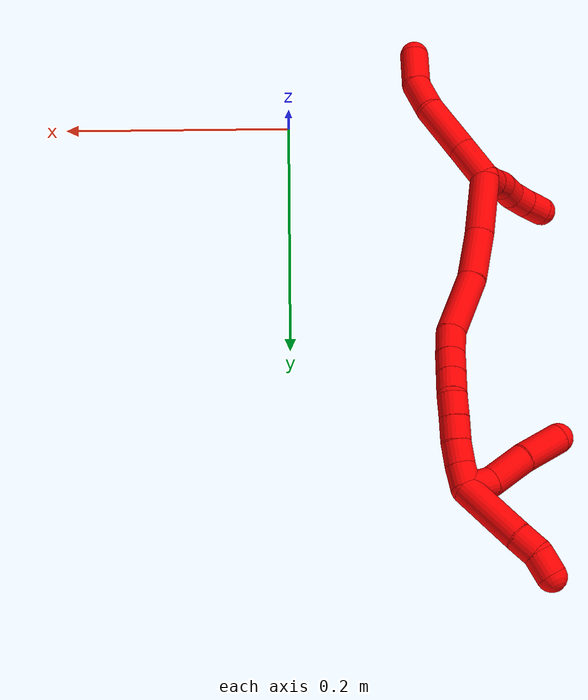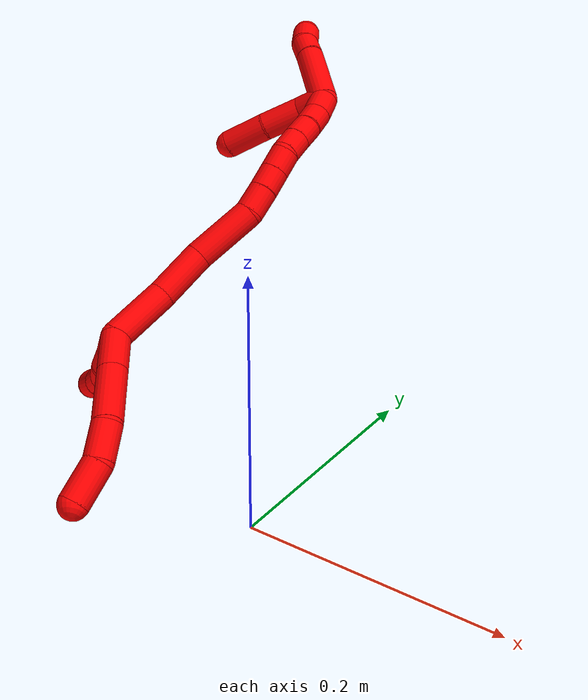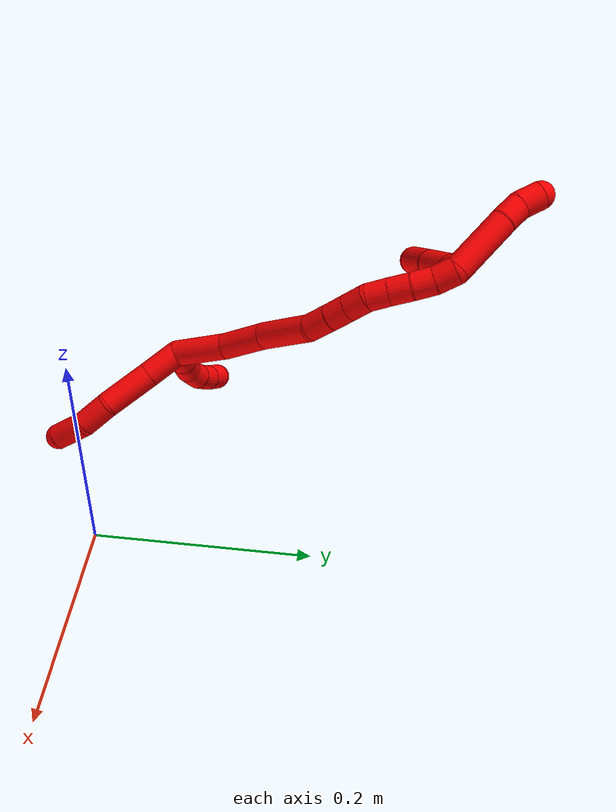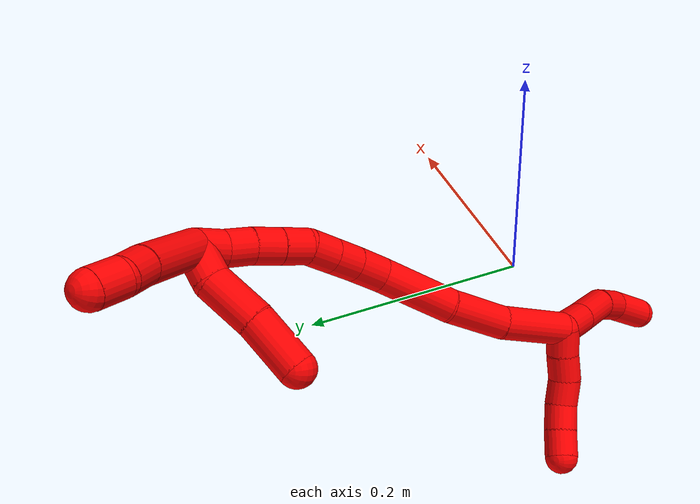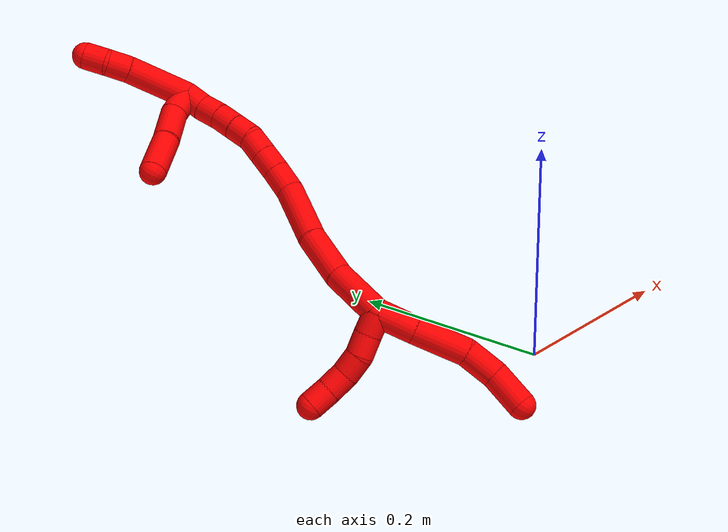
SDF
<sdf version="1.7">
 <world name="default">
  <model name="2">
   <static>0</static>
   <link name="2">
    <collision name="collision-cylinder-e_1_2_8">
     <pose>0.000566 0.002195 -0.017169 -3.01442 0.032681 -0.502464</pose>
     <geometry><cylinder><radius>0.0125</radius><length>0.034636</length></cylinder></geometry>
     <surface>
      <friction><ode><mu>1.16</mu><mu2>1.16</mu2><slip1>0</slip1><slip2>0</slip2></ode></friction>
      <contact><ode><kp>1e+06</kp><kd>1</kd><max_vel>0</max_vel><min_depth>0.001</min_depth></ode></contact>
     </surface>
    </collision>
    <visual name="visual-cylinder-e_1_2_8">
     <pose>0.000566 0.002195 -0.017169 -3.01442 0.032681 -0.502464</pose>
     <geometry><cylinder><radius>0.0125</radius><length>0.034636</length></cylinder></geometry>
     <material><ambient>1 0 0 1</ambient></material>
    </visual>
    <collision name="collision-cylinder-e_2_8_9">
     <pose>0.002492 0.007804 -0.058655 -3.00214 0.055341 -0.754644</pose>
     <geometry><cylinder><radius>0.0125</radius><length>0.049185</length></cylinder></geometry>
     <surface>
      <friction><ode><mu>1.16</mu><mu2>1.16</mu2><slip1>0</slip1><slip2>0</slip2></ode></friction>
      <contact><ode><kp>1e+06</kp><kd>1</kd><max_vel>0</max_vel><min_depth>0.001</min_depth></ode></contact>
     </surface>
    </collision>
    <visual name="visual-cylinder-e_2_8_9">
     <pose>0.002492 0.007804 -0.058655 -3.00214 0.055341 -0.754644</pose>
     <geometry><cylinder><radius>0.0125</radius><length>0.049185</length></cylinder></geometry>
     <material><ambient>1 0 0 1</ambient></material>
    </visual>
    <collision name="collision-cylinder-e_3_9_10">
     <pose>0.001906 0.010246 -0.098403 3.07876 -0.125204 -2.21214</pose>
     <geometry><cylinder><radius>0.0125</radius><length>0.031168</length></cylinder></geometry>
     <surface>
      <friction><ode><mu>1.16</mu><mu2>1.16</mu2><slip1>0</slip1><slip2>0</slip2></ode></friction>
      <contact><ode><kp>1e+06</kp><kd>1</kd><max_vel>0</max_vel><min_depth>0.001</min_depth></ode></contact>
     </surface>
    </collision>
    <visual name="visual-cylinder-e_3_9_10">
     <pose>0.001906 0.010246 -0.098403 3.07876 -0.125204 -2.21214</pose>
     <geometry><cylinder><radius>0.0125</radius><length>0.031168</length></cylinder></geometry>
     <material><ambient>1 0 0 1</ambient></material>
    </visual>
    <collision name="collision-cylinder-e_4_10_6">
     <pose>-0.001788 0.002361 -0.129821 2.7334 -0.100017 -0.474517</pose>
     <geometry><cylinder><radius>0.0125</radius><length>0.03501</length></cylinder></geometry>
     <surface>
      <friction><ode><mu>1.16</mu><mu2>1.16</mu2><slip1>0</slip1><slip2>0</slip2></ode></friction>
      <contact><ode><kp>1e+06</kp><kd>1</kd><max_vel>0</max_vel><min_depth>0.001</min_depth></ode></contact>
     </surface>
    </collision>
    <visual name="visual-cylinder-e_4_10_6">
     <pose>-0.001788 0.002361 -0.129821 2.7334 -0.100017 -0.474517</pose>
     <geometry><cylinder><radius>0.0125</radius><length>0.03501</length></cylinder></geometry>
     <material><ambient>1 0 0 1</ambient></material>
    </visual>
    <collision name="collision-cylinder-e_1_2_11">
     <pose>-0.00888 -0.004457 -0.001133 1.81963 -1.09292 -1.3275</pose>
     <geometry><cylinder><radius>0.0125</radius><length>0.02</length></cylinder></geometry>
     <surface>
      <friction><ode><mu>1.16</mu><mu2>1.16</mu2><slip1>0</slip1><slip2>0</slip2></ode></friction>
      <contact><ode><kp>1e+06</kp><kd>1</kd><max_vel>0</max_vel><min_depth>0.001</min_depth></ode></contact>
     </surface>
    </collision>
    <visual name="visual-cylinder-e_1_2_11">
     <pose>-0.00888 -0.004457 -0.001133 1.81963 -1.09292 -1.3275</pose>
     <geometry><cylinder><radius>0.0125</radius><length>0.02</length></cylinder></geometry>
     <material><ambient>1 0 0 1</ambient></material>
    </visual>
    <collision name="collision-cylinder-e_2_11_12">
     <pose>-0.026173 -0.014118 -0.003726 1.84455 -0.999829 -1.24895</pose>
     <geometry><cylinder><radius>0.0125</radius><length>0.02</length></cylinder></geometry>
     <surface>
      <friction><ode><mu>1.16</mu><mu2>1.16</mu2><slip1>0</slip1><slip2>0</slip2></ode></friction>
      <contact><ode><kp>1e+06</kp><kd>1</kd><max_vel>0</max_vel><min_depth>0.001</min_depth></ode></contact>
     </surface>
    </collision>
    <visual name="visual-cylinder-e_2_11_12">
     <pose>-0.026173 -0.014118 -0.003726 1.84455 -0.999829 -1.24895</pose>
     <geometry><cylinder><radius>0.0125</radius><length>0.02</length></cylinder></geometry>
     <material><ambient>1 0 0 1</ambient></material>
    </visual>
    <collision name="collision-cylinder-e_3_12_13">
     <pose>-0.043623 -0.023466 -0.004108 1.31608 -1.12818 -0.909659</pose>
     <geometry><cylinder><radius>0.0125</radius><length>0.02</length></cylinder></geometry>
     <surface>
      <friction><ode><mu>1.16</mu><mu2>1.16</mu2><slip1>0</slip1><slip2>0</slip2></ode></friction>
      <contact><ode><kp>1e+06</kp><kd>1</kd><max_vel>0</max_vel><min_depth>0.001</min_depth></ode></contact>
     </surface>
    </collision>
    <visual name="visual-cylinder-e_3_12_13">
     <pose>-0.043623 -0.023466 -0.004108 1.31608 -1.12818 -0.909659</pose>
     <geometry><cylinder><radius>0.0125</radius><length>0.02</length></cylinder></geometry>
     <material><ambient>1 0 0 1</ambient></material>
    </visual>
    <collision name="collision-cylinder-e_4_13_14">
     <pose>-0.060332 -0.033437 -0.000349 1.13967 -0.874556 -0.58203</pose>
     <geometry><cylinder><radius>0.0125</radius><length>0.02</length></cylinder></geometry>
     <surface>
      <friction><ode><mu>1.16</mu><mu2>1.16</mu2><slip1>0</slip1><slip2>0</slip2></ode></friction>
      <contact><ode><kp>1e+06</kp><kd>1</kd><max_vel>0</max_vel><min_depth>0.001</min_depth></ode></contact>
     </surface>
    </collision>
    <visual name="visual-cylinder-e_4_13_14">
     <pose>-0.060332 -0.033437 -0.000349 1.13967 -0.874556 -0.58203</pose>
     <geometry><cylinder><radius>0.0125</radius><length>0.02</length></cylinder></geometry>
     <material><ambient>1 0 0 1</ambient></material>
    </visual>
    <collision name="collision-cylinder-e_5_14_5">
     <pose>-0.074885 -0.045748 0.005589 1.1052 -0.758739 -0.48216</pose>
     <geometry><cylinder><radius>0.0125</radius><length>0.02</length></cylinder></geometry>
     <surface>
      <friction><ode><mu>1.16</mu><mu2>1.16</mu2><slip1>0</slip1><slip2>0</slip2></ode></friction>
      <contact><ode><kp>1e+06</kp><kd>1</kd><max_vel>0</max_vel><min_depth>0.001</min_depth></ode></contact>
     </surface>
    </collision>
    <visual name="visual-cylinder-e_5_14_5">
     <pose>-0.074885 -0.045748 0.005589 1.1052 -0.758739 -0.48216</pose>
     <geometry><cylinder><radius>0.0125</radius><length>0.02</length></cylinder></geometry>
     <material><ambient>1 0 0 1</ambient></material>
    </visual>
    <collision name="collision-cylinder-e_1_2_15">
     <pose>-0.003532 0.014275 0.022485 -0.565673 -0.13183 0.038364</pose>
     <geometry><cylinder><radius>0.0125</radius><length>0.053733</length></cylinder></geometry>
     <surface>
      <friction><ode><mu>1.16</mu><mu2>1.16</mu2><slip1>0</slip1><slip2>0</slip2></ode></friction>
      <contact><ode><kp>1e+06</kp><kd>1</kd><max_vel>0</max_vel><min_depth>0.001</min_depth></ode></contact>
     </surface>
    </collision>
    <visual name="visual-cylinder-e_1_2_15">
     <pose>-0.003532 0.014275 0.022485 -0.565673 -0.13183 0.038364</pose>
     <geometry><cylinder><radius>0.0125</radius><length>0.053733</length></cylinder></geometry>
     <material><ambient>1 0 0 1</ambient></material>
    </visual>
    <collision name="collision-cylinder-e_2_15_16">
     <pose>-0.00609 0.041807 0.063668 -0.616733 0.042452 -0.013524</pose>
     <geometry><cylinder><radius>0.0125</radius><length>0.045882</length></cylinder></geometry>
     <surface>
      <friction><ode><mu>1.16</mu><mu2>1.16</mu2><slip1>0</slip1><slip2>0</slip2></ode></friction>
      <contact><ode><kp>1e+06</kp><kd>1</kd><max_vel>0</max_vel><min_depth>0.001</min_depth></ode></contact>
     </surface>
    </collision>
    <visual name="visual-cylinder-e_2_15_16">
     <pose>-0.00609 0.041807 0.063668 -0.616733 0.042452 -0.013524</pose>
     <geometry><cylinder><radius>0.0125</radius><length>0.045882</length></cylinder></geometry>
     <material><ambient>1 0 0 1</ambient></material>
    </visual>
    <collision name="collision-cylinder-e_3_16_17">
     <pose>-0.002702 0.074933 0.102264 -0.784674 0.085622 -0.035447</pose>
     <geometry><cylinder><radius>0.0125</radius><length>0.056448</length></cylinder></geometry>
     <surface>
      <friction><ode><mu>1.16</mu><mu2>1.16</mu2><slip1>0</slip1><slip2>0</slip2></ode></friction>
      <contact><ode><kp>1e+06</kp><kd>1</kd><max_vel>0</max_vel><min_depth>0.001</min_depth></ode></contact>
     </surface>
    </collision>
    <visual name="visual-cylinder-e_3_16_17">
     <pose>-0.002702 0.074933 0.102264 -0.784674 0.085622 -0.035447</pose>
     <geometry><cylinder><radius>0.0125</radius><length>0.056448</length></cylinder></geometry>
     <material><ambient>1 0 0 1</ambient></material>
    </visual>
    <collision name="collision-cylinder-e_4_17_18">
     <pose>0.001707 0.100282 0.132571 -0.484499 0.168069 -0.041622</pose>
     <geometry><cylinder><radius>0.0125</radius><length>0.02386</length></cylinder></geometry>
     <surface>
      <friction><ode><mu>1.16</mu><mu2>1.16</mu2><slip1>0</slip1><slip2>0</slip2></ode></friction>
      <contact><ode><kp>1e+06</kp><kd>1</kd><max_vel>0</max_vel><min_depth>0.001</min_depth></ode></contact>
     </surface>
    </collision>
    <visual name="visual-cylinder-e_4_17_18">
     <pose>0.001707 0.100282 0.132571 -0.484499 0.168069 -0.041622</pose>
     <geometry><cylinder><radius>0.0125</radius><length>0.02386</length></cylinder></geometry>
     <material><ambient>1 0 0 1</ambient></material>
    </visual>
    <collision name="collision-cylinder-e_5_18_19">
     <pose>0.005267 0.109926 0.151938 -0.4353 0.157044 -0.034799</pose>
     <geometry><cylinder><radius>0.0125</radius><length>0.020006</length></cylinder></geometry>
     <surface>
      <friction><ode><mu>1.16</mu><mu2>1.16</mu2><slip1>0</slip1><slip2>0</slip2></ode></friction>
      <contact><ode><kp>1e+06</kp><kd>1</kd><max_vel>0</max_vel><min_depth>0.001</min_depth></ode></contact>
     </surface>
    </collision>
    <visual name="visual-cylinder-e_5_18_19">
     <pose>0.005267 0.109926 0.151938 -0.4353 0.157044 -0.034799</pose>
     <geometry><cylinder><radius>0.0125</radius><length>0.020006</length></cylinder></geometry>
     <material><ambient>1 0 0 1</ambient></material>
    </visual>
    <collision name="collision-cylinder-e_6_19_20">
     <pose>0.008395 0.118262 0.169878 -0.434613 0.156552 -0.034633</pose>
     <geometry><cylinder><radius>0.0125</radius><length>0.02005</length></cylinder></geometry>
     <surface>
      <friction><ode><mu>1.16</mu><mu2>1.16</mu2><slip1>0</slip1><slip2>0</slip2></ode></friction>
      <contact><ode><kp>1e+06</kp><kd>1</kd><max_vel>0</max_vel><min_depth>0.001</min_depth></ode></contact>
     </surface>
    </collision>
    <visual name="visual-cylinder-e_6_19_20">
     <pose>0.008395 0.118262 0.169878 -0.434613 0.156552 -0.034633</pose>
     <geometry><cylinder><radius>0.0125</radius><length>0.02005</length></cylinder></geometry>
     <material><ambient>1 0 0 1</ambient></material>
    </visual>
    <collision name="collision-cylinder-e_7_20_21">
     <pose>0.008393 0.126083 0.188045 -0.378461 -0.156965 0.030122</pose>
     <geometry><cylinder><radius>0.0125</radius><length>0.020015</length></cylinder></geometry>
     <surface>
      <friction><ode><mu>1.16</mu><mu2>1.16</mu2><slip1>0</slip1><slip2>0</slip2></ode></friction>
      <contact><ode><kp>1e+06</kp><kd>1</kd><max_vel>0</max_vel><min_depth>0.001</min_depth></ode></contact>
     </surface>
    </collision>
    <visual name="visual-cylinder-e_7_20_21">
     <pose>0.008393 0.126083 0.188045 -0.378461 -0.156965 0.030122</pose>
     <geometry><cylinder><radius>0.0125</radius><length>0.020015</length></cylinder></geometry>
     <material><ambient>1 0 0 1</ambient></material>
    </visual>
    <collision name="collision-cylinder-e_8_21_22">
     <pose>0.005132 0.133611 0.206294 -0.404028 -0.170464 0.034993</pose>
     <geometry><cylinder><radius>0.0125</radius><length>0.020004</length></cylinder></geometry>
     <surface>
      <friction><ode><mu>1.16</mu><mu2>1.16</mu2><slip1>0</slip1><slip2>0</slip2></ode></friction>
      <contact><ode><kp>1e+06</kp><kd>1</kd><max_vel>0</max_vel><min_depth>0.001</min_depth></ode></contact>
     </surface>
    </collision>
    <visual name="visual-cylinder-e_8_21_22">
     <pose>0.005132 0.133611 0.206294 -0.404028 -0.170464 0.034993</pose>
     <geometry><cylinder><radius>0.0125</radius><length>0.020004</length></cylinder></geometry>
     <material><ambient>1 0 0 1</ambient></material>
    </visual>
    <collision name="collision-cylinder-e_9_22_23">
     <pose>0.00129 0.14033 0.224701 -0.295435 -0.21621 0.032296</pose>
     <geometry><cylinder><radius>0.0125</radius><length>0.02</length></cylinder></geometry>
     <surface>
      <friction><ode><mu>1.16</mu><mu2>1.16</mu2><slip1>0</slip1><slip2>0</slip2></ode></friction>
      <contact><ode><kp>1e+06</kp><kd>1</kd><max_vel>0</max_vel><min_depth>0.001</min_depth></ode></contact>
     </surface>
    </collision>
    <visual name="visual-cylinder-e_9_22_23">
     <pose>0.00129 0.14033 0.224701 -0.295435 -0.21621 0.032296</pose>
     <geometry><cylinder><radius>0.0125</radius><length>0.02</length></cylinder></geometry>
     <material><ambient>1 0 0 1</ambient></material>
    </visual>
    <collision name="collision-cylinder-e_10_23_1">
     <pose>-0.00117 0.145526 0.24376 -0.23763 -0.031426 0.003752</pose>
     <geometry><cylinder><radius>0.0125</radius><length>0.020001</length></cylinder></geometry>
     <surface>
      <friction><ode><mu>1.16</mu><mu2>1.16</mu2><slip1>0</slip1><slip2>0</slip2></ode></friction>
      <contact><ode><kp>1e+06</kp><kd>1</kd><max_vel>0</max_vel><min_depth>0.001</min_depth></ode></contact>
     </surface>
    </collision>
    <visual name="visual-cylinder-e_10_23_1">
     <pose>-0.00117 0.145526 0.24376 -0.23763 -0.031426 0.003752</pose>
     <geometry><cylinder><radius>0.0125</radius><length>0.020001</length></cylinder></geometry>
     <material><ambient>1 0 0 1</ambient></material>
    </visual>
    <collision name="collision-cylinder-e_1_1_24">
     <pose>-0.006587 0.136656 0.253231 1.59249 -0.426644 -0.43571</pose>
     <geometry><cylinder><radius>0.0125</radius><length>0.024663</length></cylinder></geometry>
     <surface>
      <friction><ode><mu>1.16</mu><mu2>1.16</mu2><slip1>0</slip1><slip2>0</slip2></ode></friction>
      <contact><ode><kp>1e+06</kp><kd>1</kd><max_vel>0</max_vel><min_depth>0.001</min_depth></ode></contact>
     </surface>
    </collision>
    <visual name="visual-cylinder-e_1_1_24">
     <pose>-0.006587 0.136656 0.253231 1.59249 -0.426644 -0.43571</pose>
     <geometry><cylinder><radius>0.0125</radius><length>0.024663</length></cylinder></geometry>
     <material><ambient>1 0 0 1</ambient></material>
    </visual>
    <collision name="collision-cylinder-e_2_24_25">
     <pose>-0.015167 0.108266 0.248058 1.85039 -0.192277 -0.254656</pose>
     <geometry><cylinder><radius>0.0125</radius><length>0.036392</length></cylinder></geometry>
     <surface>
      <friction><ode><mu>1.16</mu><mu2>1.16</mu2><slip1>0</slip1><slip2>0</slip2></ode></friction>
      <contact><ode><kp>1e+06</kp><kd>1</kd><max_vel>0</max_vel><min_depth>0.001</min_depth></ode></contact>
     </surface>
    </collision>
    <visual name="visual-cylinder-e_2_24_25">
     <pose>-0.015167 0.108266 0.248058 1.85039 -0.192277 -0.254656</pose>
     <geometry><cylinder><radius>0.0125</radius><length>0.036392</length></cylinder></geometry>
     <material><ambient>1 0 0 1</ambient></material>
    </visual>
    <collision name="collision-cylinder-e_3_25_4">
     <pose>-0.024279 0.072853 0.239316 1.77682 -0.293574 -0.35995</pose>
     <geometry><cylinder><radius>0.0125</radius><length>0.038946</length></cylinder></geometry>
     <surface>
      <friction><ode><mu>1.16</mu><mu2>1.16</mu2><slip1>0</slip1><slip2>0</slip2></ode></friction>
      <contact><ode><kp>1e+06</kp><kd>1</kd><max_vel>0</max_vel><min_depth>0.001</min_depth></ode></contact>
     </surface>
    </collision>
    <visual name="visual-cylinder-e_3_25_4">
     <pose>-0.024279 0.072853 0.239316 1.77682 -0.293574 -0.35995</pose>
     <geometry><cylinder><radius>0.0125</radius><length>0.038946</length></cylinder></geometry>
     <material><ambient>1 0 0 1</ambient></material>
    </visual>
    <collision name="collision-cylinder-e_1_1_26">
     <pose>1.8e-05 0.139321 0.281475 0.296645 0.05125 0.007659</pose>
     <geometry><cylinder><radius>0.0125</radius><length>0.058636</length></cylinder></geometry>
     <surface>
      <friction><ode><mu>1.16</mu><mu2>1.16</mu2><slip1>0</slip1><slip2>0</slip2></ode></friction>
      <contact><ode><kp>1e+06</kp><kd>1</kd><max_vel>0</max_vel><min_depth>0.001</min_depth></ode></contact>
     </surface>
    </collision>
    <visual name="visual-cylinder-e_1_1_26">
     <pose>1.8e-05 0.139321 0.281475 0.296645 0.05125 0.007659</pose>
     <geometry><cylinder><radius>0.0125</radius><length>0.058636</length></cylinder></geometry>
     <material><ambient>1 0 0 1</ambient></material>
    </visual>
    <collision name="collision-cylinder-e_2_26_27">
     <pose>0.00113 0.127247 0.319098 0.350221 -0.038011 -0.006726</pose>
     <geometry><cylinder><radius>0.0125</radius><length>0.020505</length></cylinder></geometry>
     <surface>
      <friction><ode><mu>1.16</mu><mu2>1.16</mu2><slip1>0</slip1><slip2>0</slip2></ode></friction>
      <contact><ode><kp>1e+06</kp><kd>1</kd><max_vel>0</max_vel><min_depth>0.001</min_depth></ode></contact>
     </surface>
    </collision>
    <visual name="visual-cylinder-e_2_26_27">
     <pose>0.00113 0.127247 0.319098 0.350221 -0.038011 -0.006726</pose>
     <geometry><cylinder><radius>0.0125</radius><length>0.020505</length></cylinder></geometry>
     <material><ambient>1 0 0 1</ambient></material>
    </visual>
    <collision name="collision-cylinder-e_3_27_3">
     <pose>-0.001599 0.122973 0.338857 0.074699 -0.226229 -0.00849</pose>
     <geometry><cylinder><radius>0.0125</radius><length>0.020859</length></cylinder></geometry>
     <surface>
      <friction><ode><mu>1.16</mu><mu2>1.16</mu2><slip1>0</slip1><slip2>0</slip2></ode></friction>
      <contact><ode><kp>1e+06</kp><kd>1</kd><max_vel>0</max_vel><min_depth>0.001</min_depth></ode></contact>
     </surface>
    </collision>
    <visual name="visual-cylinder-e_3_27_3">
     <pose>-0.001599 0.122973 0.338857 0.074699 -0.226229 -0.00849</pose>
     <geometry><cylinder><radius>0.0125</radius><length>0.020859</length></cylinder></geometry>
     <material><ambient>1 0 0 1</ambient></material>
    </visual>
    <collision name="collision-sphere-3">
     <pose>-0.003938 0.122215 0.348993 0 -0 0</pose>
     <geometry><sphere><radius>0.0125</radius></sphere></geometry>
     <surface>
      <friction><ode><mu>1.16</mu><mu2>1.16</mu2><slip1>0</slip1><slip2>0</slip2></ode></friction>
      <contact><ode><kp>1e+06</kp><kd>1</kd><max_vel>0</max_vel><min_depth>0.001</min_depth></ode></contact>
     </surface>
    </collision>
    <visual name="visual-sphere-3">
     <pose>-0.003938 0.122215 0.348993 0 -0 0</pose>
     <geometry><sphere><radius>0.0125</radius></sphere></geometry>
     <material><ambient>1 0 0 1</ambient></material>
    </visual>
    <collision name="collision-sphere-27">
     <pose>0.000741 0.123732 0.328721 0 -0 0</pose>
     <geometry><sphere><radius>0.0125</radius></sphere></geometry>
     <surface>
      <friction><ode><mu>1.16</mu><mu2>1.16</mu2><slip1>0</slip1><slip2>0</slip2></ode></friction>
      <contact><ode><kp>1e+06</kp><kd>1</kd><max_vel>0</max_vel><min_depth>0.001</min_depth></ode></contact>
     </surface>
    </collision>
    <visual name="visual-sphere-27">
     <pose>0.000741 0.123732 0.328721 0 -0 0</pose>
     <geometry><sphere><radius>0.0125</radius></sphere></geometry>
     <material><ambient>1 0 0 1</ambient></material>
    </visual>
    <collision name="collision-sphere-26">
     <pose>0.00152 0.130762 0.309475 0 -0 0</pose>
     <geometry><sphere><radius>0.0125</radius></sphere></geometry>
     <surface>
      <friction><ode><mu>1.16</mu><mu2>1.16</mu2><slip1>0</slip1><slip2>0</slip2></ode></friction>
      <contact><ode><kp>1e+06</kp><kd>1</kd><max_vel>0</max_vel><min_depth>0.001</min_depth></ode></contact>
     </surface>
    </collision>
    <visual name="visual-sphere-26">
     <pose>0.00152 0.130762 0.309475 0 -0 0</pose>
     <geometry><sphere><radius>0.0125</radius></sphere></geometry>
     <material><ambient>1 0 0 1</ambient></material>
    </visual>
    <collision name="collision-sphere-4">
     <pose>-0.029914 0.054608 0.235503 0 -0 0</pose>
     <geometry><sphere><radius>0.0125</radius></sphere></geometry>
     <surface>
      <friction><ode><mu>1.16</mu><mu2>1.16</mu2><slip1>0</slip1><slip2>0</slip2></ode></friction>
      <contact><ode><kp>1e+06</kp><kd>1</kd><max_vel>0</max_vel><min_depth>0.001</min_depth></ode></contact>
     </surface>
    </collision>
    <visual name="visual-sphere-4">
     <pose>-0.029914 0.054608 0.235503 0 -0 0</pose>
     <geometry><sphere><radius>0.0125</radius></sphere></geometry>
     <material><ambient>1 0 0 1</ambient></material>
    </visual>
    <collision name="collision-sphere-25">
     <pose>-0.018644 0.091099 0.243129 0 -0 0</pose>
     <geometry><sphere><radius>0.0125</radius></sphere></geometry>
     <surface>
      <friction><ode><mu>1.16</mu><mu2>1.16</mu2><slip1>0</slip1><slip2>0</slip2></ode></friction>
      <contact><ode><kp>1e+06</kp><kd>1</kd><max_vel>0</max_vel><min_depth>0.001</min_depth></ode></contact>
     </surface>
    </collision>
    <visual name="visual-sphere-25">
     <pose>-0.018644 0.091099 0.243129 0 -0 0</pose>
     <geometry><sphere><radius>0.0125</radius></sphere></geometry>
     <material><ambient>1 0 0 1</ambient></material>
    </visual>
    <collision name="collision-sphere-24">
     <pose>-0.01169 0.125433 0.252987 0 -0 0</pose>
     <geometry><sphere><radius>0.0125</radius></sphere></geometry>
     <surface>
      <friction><ode><mu>1.16</mu><mu2>1.16</mu2><slip1>0</slip1><slip2>0</slip2></ode></friction>
      <contact><ode><kp>1e+06</kp><kd>1</kd><max_vel>0</max_vel><min_depth>0.001</min_depth></ode></contact>
     </surface>
    </collision>
    <visual name="visual-sphere-24">
     <pose>-0.01169 0.125433 0.252987 0 -0 0</pose>
     <geometry><sphere><radius>0.0125</radius></sphere></geometry>
     <material><ambient>1 0 0 1</ambient></material>
    </visual>
    <collision name="collision-sphere-1">
     <pose>-0.001484 0.147879 0.253474 0 -0 0</pose>
     <geometry><sphere><radius>0.0125</radius></sphere></geometry>
     <surface>
      <friction><ode><mu>1.16</mu><mu2>1.16</mu2><slip1>0</slip1><slip2>0</slip2></ode></friction>
      <contact><ode><kp>1e+06</kp><kd>1</kd><max_vel>0</max_vel><min_depth>0.001</min_depth></ode></contact>
     </surface>
    </collision>
    <visual name="visual-sphere-1">
     <pose>-0.001484 0.147879 0.253474 0 -0 0</pose>
     <geometry><sphere><radius>0.0125</radius></sphere></geometry>
     <material><ambient>1 0 0 1</ambient></material>
    </visual>
    <collision name="collision-sphere-23">
     <pose>-0.000855 0.143174 0.234045 0 -0 0</pose>
     <geometry><sphere><radius>0.0125</radius></sphere></geometry>
     <surface>
      <friction><ode><mu>1.16</mu><mu2>1.16</mu2><slip1>0</slip1><slip2>0</slip2></ode></friction>
      <contact><ode><kp>1e+06</kp><kd>1</kd><max_vel>0</max_vel><min_depth>0.001</min_depth></ode></contact>
     </surface>
    </collision>
    <visual name="visual-sphere-23">
     <pose>-0.000855 0.143174 0.234045 0 -0 0</pose>
     <geometry><sphere><radius>0.0125</radius></sphere></geometry>
     <material><ambient>1 0 0 1</ambient></material>
    </visual>
    <collision name="collision-sphere-22">
     <pose>0.003435 0.137486 0.215357 0 -0 0</pose>
     <geometry><sphere><radius>0.0125</radius></sphere></geometry>
     <surface>
      <friction><ode><mu>1.16</mu><mu2>1.16</mu2><slip1>0</slip1><slip2>0</slip2></ode></friction>
      <contact><ode><kp>1e+06</kp><kd>1</kd><max_vel>0</max_vel><min_depth>0.001</min_depth></ode></contact>
     </surface>
    </collision>
    <visual name="visual-sphere-22">
     <pose>0.003435 0.137486 0.215357 0 -0 0</pose>
     <geometry><sphere><radius>0.0125</radius></sphere></geometry>
     <material><ambient>1 0 0 1</ambient></material>
    </visual>
    <collision name="collision-sphere-21">
     <pose>0.006829 0.129736 0.19723 0 -0 0</pose>
     <geometry><sphere><radius>0.0125</radius></sphere></geometry>
     <surface>
      <friction><ode><mu>1.16</mu><mu2>1.16</mu2><slip1>0</slip1><slip2>0</slip2></ode></friction>
      <contact><ode><kp>1e+06</kp><kd>1</kd><max_vel>0</max_vel><min_depth>0.001</min_depth></ode></contact>
     </surface>
    </collision>
    <visual name="visual-sphere-21">
     <pose>0.006829 0.129736 0.19723 0 -0 0</pose>
     <geometry><sphere><radius>0.0125</radius></sphere></geometry>
     <material><ambient>1 0 0 1</ambient></material>
    </visual>
    <collision name="collision-sphere-11">
     <pose>-0.017759 -0.008915 -0.002265 0 -0 0</pose>
     <geometry><sphere><radius>0.0125</radius></sphere></geometry>
     <surface>
      <friction><ode><mu>1.16</mu><mu2>1.16</mu2><slip1>0</slip1><slip2>0</slip2></ode></friction>
      <contact><ode><kp>1e+06</kp><kd>1</kd><max_vel>0</max_vel><min_depth>0.001</min_depth></ode></contact>
     </surface>
    </collision>
    <visual name="visual-sphere-11">
     <pose>-0.017759 -0.008915 -0.002265 0 -0 0</pose>
     <geometry><sphere><radius>0.0125</radius></sphere></geometry>
     <material><ambient>1 0 0 1</ambient></material>
    </visual>
    <collision name="collision-sphere-6">
     <pose>-0.003536 -0.004553 -0.145808 0 -0 0</pose>
     <geometry><sphere><radius>0.0125</radius></sphere></geometry>
     <surface>
      <friction><ode><mu>1.16</mu><mu2>1.16</mu2><slip1>0</slip1><slip2>0</slip2></ode></friction>
      <contact><ode><kp>1e+06</kp><kd>1</kd><max_vel>0</max_vel><min_depth>0.001</min_depth></ode></contact>
     </surface>
    </collision>
    <visual name="visual-sphere-6">
     <pose>-0.003536 -0.004553 -0.145808 0 -0 0</pose>
     <geometry><sphere><radius>0.0125</radius></sphere></geometry>
     <material><ambient>1 0 0 1</ambient></material>
    </visual>
    <collision name="collision-sphere-10">
     <pose>-4e-05 0.009275 -0.113834 0 -0 0</pose>
     <geometry><sphere><radius>0.0125</radius></sphere></geometry>
     <surface>
      <friction><ode><mu>1.16</mu><mu2>1.16</mu2><slip1>0</slip1><slip2>0</slip2></ode></friction>
      <contact><ode><kp>1e+06</kp><kd>1</kd><max_vel>0</max_vel><min_depth>0.001</min_depth></ode></contact>
     </surface>
    </collision>
    <visual name="visual-sphere-10">
     <pose>-4e-05 0.009275 -0.113834 0 -0 0</pose>
     <geometry><sphere><radius>0.0125</radius></sphere></geometry>
     <material><ambient>1 0 0 1</ambient></material>
    </visual>
    <collision name="collision-sphere-9">
     <pose>0.003852 0.011217 -0.082971 0 -0 0</pose>
     <geometry><sphere><radius>0.0125</radius></sphere></geometry>
     <surface>
      <friction><ode><mu>1.16</mu><mu2>1.16</mu2><slip1>0</slip1><slip2>0</slip2></ode></friction>
      <contact><ode><kp>1e+06</kp><kd>1</kd><max_vel>0</max_vel><min_depth>0.001</min_depth></ode></contact>
     </surface>
    </collision>
    <visual name="visual-sphere-9">
     <pose>0.003852 0.011217 -0.082971 0 -0 0</pose>
     <geometry><sphere><radius>0.0125</radius></sphere></geometry>
     <material><ambient>1 0 0 1</ambient></material>
    </visual>
    <collision name="collision-sphere-2">
     <geometry><sphere><radius>0.0125</radius></sphere></geometry>
     <surface>
      <friction><ode><mu>1.16</mu><mu2>1.16</mu2><slip1>0</slip1><slip2>0</slip2></ode></friction>
      <contact><ode><kp>1e+06</kp><kd>1</kd><max_vel>0</max_vel><min_depth>0.001</min_depth></ode></contact>
     </surface>
    </collision>
    <visual name="visual-sphere-2">
     <geometry><sphere><radius>0.0125</radius></sphere></geometry>
     <material><ambient>1 0 0 1</ambient></material>
    </visual>
    <collision name="collision-sphere-19">
     <pose>0.006832 0.114092 0.160896 0 -0 0</pose>
     <geometry><sphere><radius>0.0125</radius></sphere></geometry>
     <surface>
      <friction><ode><mu>1.16</mu><mu2>1.16</mu2><slip1>0</slip1><slip2>0</slip2></ode></friction>
      <contact><ode><kp>1e+06</kp><kd>1</kd><max_vel>0</max_vel><min_depth>0.001</min_depth></ode></contact>
     </surface>
    </collision>
    <visual name="visual-sphere-19">
     <pose>0.006832 0.114092 0.160896 0 -0 0</pose>
     <geometry><sphere><radius>0.0125</radius></sphere></geometry>
     <material><ambient>1 0 0 1</ambient></material>
    </visual>
    <collision name="collision-sphere-8">
     <pose>0.001132 0.004391 -0.034338 0 -0 0</pose>
     <geometry><sphere><radius>0.0125</radius></sphere></geometry>
     <surface>
      <friction><ode><mu>1.16</mu><mu2>1.16</mu2><slip1>0</slip1><slip2>0</slip2></ode></friction>
      <contact><ode><kp>1e+06</kp><kd>1</kd><max_vel>0</max_vel><min_depth>0.001</min_depth></ode></contact>
     </surface>
    </collision>
    <visual name="visual-sphere-8">
     <pose>0.001132 0.004391 -0.034338 0 -0 0</pose>
     <geometry><sphere><radius>0.0125</radius></sphere></geometry>
     <material><ambient>1 0 0 1</ambient></material>
    </visual>
    <collision name="collision-sphere-12">
     <pose>-0.034587 -0.019321 -0.005187 0 -0 0</pose>
     <geometry><sphere><radius>0.0125</radius></sphere></geometry>
     <surface>
      <friction><ode><mu>1.16</mu><mu2>1.16</mu2><slip1>0</slip1><slip2>0</slip2></ode></friction>
      <contact><ode><kp>1e+06</kp><kd>1</kd><max_vel>0</max_vel><min_depth>0.001</min_depth></ode></contact>
     </surface>
    </collision>
    <visual name="visual-sphere-12">
     <pose>-0.034587 -0.019321 -0.005187 0 -0 0</pose>
     <geometry><sphere><radius>0.0125</radius></sphere></geometry>
     <material><ambient>1 0 0 1</ambient></material>
    </visual>
    <collision name="collision-sphere-13">
     <pose>-0.05266 -0.027611 -0.003029 0 -0 0</pose>
     <geometry><sphere><radius>0.0125</radius></sphere></geometry>
     <surface>
      <friction><ode><mu>1.16</mu><mu2>1.16</mu2><slip1>0</slip1><slip2>0</slip2></ode></friction>
      <contact><ode><kp>1e+06</kp><kd>1</kd><max_vel>0</max_vel><min_depth>0.001</min_depth></ode></contact>
     </surface>
    </collision>
    <visual name="visual-sphere-13">
     <pose>-0.05266 -0.027611 -0.003029 0 -0 0</pose>
     <geometry><sphere><radius>0.0125</radius></sphere></geometry>
     <material><ambient>1 0 0 1</ambient></material>
    </visual>
    <collision name="collision-sphere-14">
     <pose>-0.068005 -0.039264 0.002331 0 -0 0</pose>
     <geometry><sphere><radius>0.0125</radius></sphere></geometry>
     <surface>
      <friction><ode><mu>1.16</mu><mu2>1.16</mu2><slip1>0</slip1><slip2>0</slip2></ode></friction>
      <contact><ode><kp>1e+06</kp><kd>1</kd><max_vel>0</max_vel><min_depth>0.001</min_depth></ode></contact>
     </surface>
    </collision>
    <visual name="visual-sphere-14">
     <pose>-0.068005 -0.039264 0.002331 0 -0 0</pose>
     <geometry><sphere><radius>0.0125</radius></sphere></geometry>
     <material><ambient>1 0 0 1</ambient></material>
    </visual>
    <collision name="collision-sphere-5">
     <pose>-0.081765 -0.052233 0.008848 0 -0 0</pose>
     <geometry><sphere><radius>0.0125</radius></sphere></geometry>
     <surface>
      <friction><ode><mu>1.16</mu><mu2>1.16</mu2><slip1>0</slip1><slip2>0</slip2></ode></friction>
      <contact><ode><kp>1e+06</kp><kd>1</kd><max_vel>0</max_vel><min_depth>0.001</min_depth></ode></contact>
     </surface>
    </collision>
    <visual name="visual-sphere-5">
     <pose>-0.081765 -0.052233 0.008848 0 -0 0</pose>
     <geometry><sphere><radius>0.0125</radius></sphere></geometry>
     <material><ambient>1 0 0 1</ambient></material>
    </visual>
    <collision name="collision-sphere-15">
     <pose>-0.007063 0.02855 0.04497 0 -0 0</pose>
     <geometry><sphere><radius>0.0125</radius></sphere></geometry>
     <surface>
      <friction><ode><mu>1.16</mu><mu2>1.16</mu2><slip1>0</slip1><slip2>0</slip2></ode></friction>
      <contact><ode><kp>1e+06</kp><kd>1</kd><max_vel>0</max_vel><min_depth>0.001</min_depth></ode></contact>
     </surface>
    </collision>
    <visual name="visual-sphere-15">
     <pose>-0.007063 0.02855 0.04497 0 -0 0</pose>
     <geometry><sphere><radius>0.0125</radius></sphere></geometry>
     <material><ambient>1 0 0 1</ambient></material>
    </visual>
    <collision name="collision-sphere-16">
     <pose>-0.005116 0.055064 0.082365 0 -0 0</pose>
     <geometry><sphere><radius>0.0125</radius></sphere></geometry>
     <surface>
      <friction><ode><mu>1.16</mu><mu2>1.16</mu2><slip1>0</slip1><slip2>0</slip2></ode></friction>
      <contact><ode><kp>1e+06</kp><kd>1</kd><max_vel>0</max_vel><min_depth>0.001</min_depth></ode></contact>
     </surface>
    </collision>
    <visual name="visual-sphere-16">
     <pose>-0.005116 0.055064 0.082365 0 -0 0</pose>
     <geometry><sphere><radius>0.0125</radius></sphere></geometry>
     <material><ambient>1 0 0 1</ambient></material>
    </visual>
    <collision name="collision-sphere-17">
     <pose>-0.000289 0.094803 0.122163 0 -0 0</pose>
     <geometry><sphere><radius>0.0125</radius></sphere></geometry>
     <surface>
      <friction><ode><mu>1.16</mu><mu2>1.16</mu2><slip1>0</slip1><slip2>0</slip2></ode></friction>
      <contact><ode><kp>1e+06</kp><kd>1</kd><max_vel>0</max_vel><min_depth>0.001</min_depth></ode></contact>
     </surface>
    </collision>
    <visual name="visual-sphere-17">
     <pose>-0.000289 0.094803 0.122163 0 -0 0</pose>
     <geometry><sphere><radius>0.0125</radius></sphere></geometry>
     <material><ambient>1 0 0 1</ambient></material>
    </visual>
    <collision name="collision-sphere-18">
     <pose>0.003703 0.10576 0.142979 0 -0 0</pose>
     <geometry><sphere><radius>0.0125</radius></sphere></geometry>
     <surface>
      <friction><ode><mu>1.16</mu><mu2>1.16</mu2><slip1>0</slip1><slip2>0</slip2></ode></friction>
      <contact><ode><kp>1e+06</kp><kd>1</kd><max_vel>0</max_vel><min_depth>0.001</min_depth></ode></contact>
     </surface>
    </collision>
    <visual name="visual-sphere-18">
     <pose>0.003703 0.10576 0.142979 0 -0 0</pose>
     <geometry><sphere><radius>0.0125</radius></sphere></geometry>
     <material><ambient>1 0 0 1</ambient></material>
    </visual>
    <collision name="collision-sphere-20">
     <pose>0.009958 0.122431 0.17886 0 -0 0</pose>
     <geometry><sphere><radius>0.0125</radius></sphere></geometry>
     <surface>
      <friction><ode><mu>1.16</mu><mu2>1.16</mu2><slip1>0</slip1><slip2>0</slip2></ode></friction>
      <contact><ode><kp>1e+06</kp><kd>1</kd><max_vel>0</max_vel><min_depth>0.001</min_depth></ode></contact>
     </surface>
    </collision>
    <visual name="visual-sphere-20">
     <pose>0.009958 0.122431 0.17886 0 -0 0</pose>
     <geometry><sphere><radius>0.0125</radius></sphere></geometry>
     <material><ambient>1 0 0 1</ambient></material>
    </visual>
    <inertial>
     <pose>-0.00779 0.062294 0.107084 0 -0 0</pose>
     <mass>0.75</mass>
     <inertia><ixx>7.3e-05</ixx><ixy>0</ixy><ixz>0</ixz><iyy>2.9e-05</iyy><iyz>0</iyz><izz>1.8e-05</izz></inertia>
    </inertial>
   </link>
   <pose>-0.168736 0.049382 0.084644 0.298958 -1.05091 -1.4257</pose>
  </model>
 </world>
</sdf>
